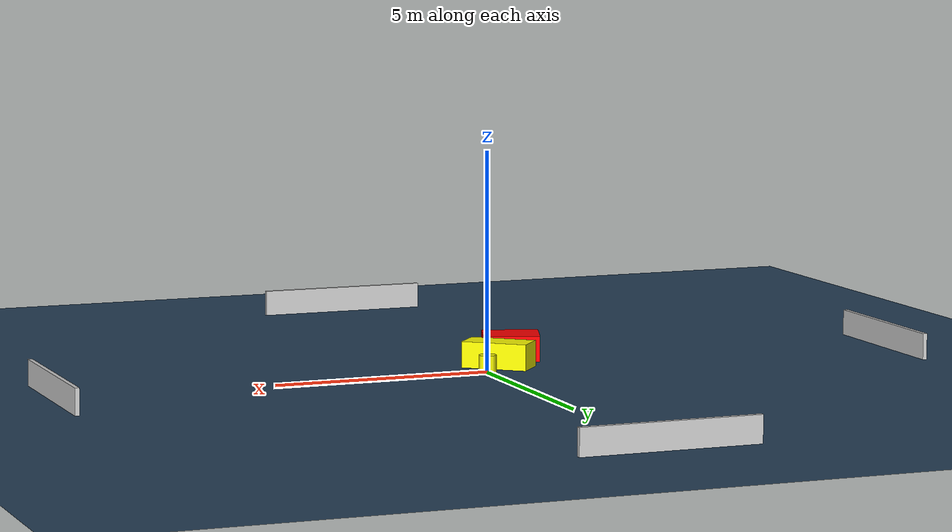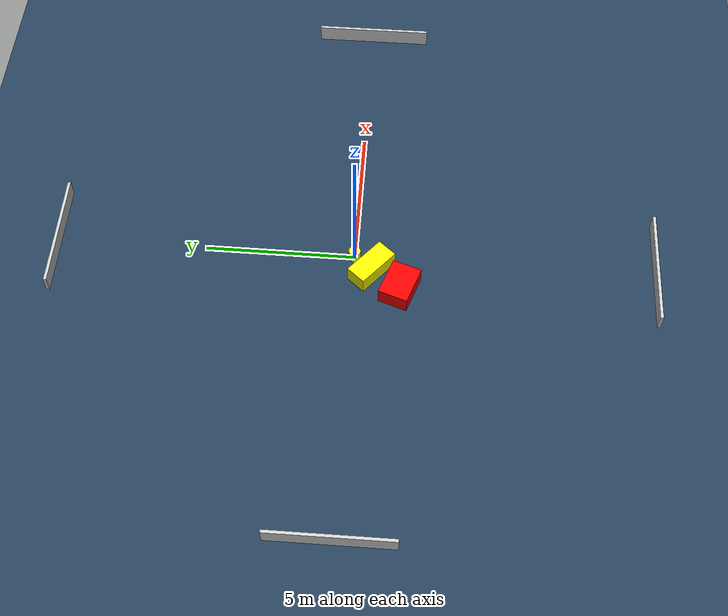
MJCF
<?xml version="1.0" ?>
<mujoco model="generated_environment">
  <option timestep="0.01" integrator="RK4" cone="elliptic"/>
  <default>
    <geom density="1"/>
  </default>
  <asset>
    <texture builtin="gradient" height="3072" name="skybox" rgb1="0.3 0.5 0.7" rgb2="0 0 0" type="skybox" width="512"/>
    <texture builtin="checker" height="300" name="groundplane" rgb1="0.2 0.3 0.4" rgb2="0.1 0.2 0.3" type="2d" width="300"/>
    <material name="groundplane" reflectance="0.2" texrepeat="5 5" texture="groundplane"/>
  </asset>
  <worldbody>
    <light dir="0 0 -1" directional="true" pos="0 0 1.5"/>
    <geom condim="3" friction="0.5 0.005 0.001" material="groundplane" name="floor" pos="0 0 0" size="0 0 0.05" type="plane"/>
    <body name="walls">
      <geom name="wall_1" condim="4" pos="-10.0 0.0 0.3" rgba="0.800000011920929 0.800000011920929 0.800000011920929 1.0" size="0.05 2.0 0.3" type="box"/>
      <geom name="wall_2" condim="4" pos="10.0 0.0 0.3" rgba="0.800000011920929 0.800000011920929 0.800000011920929 1.0" size="0.05 2.0 0.3" type="box"/>
      <geom name="wall_3" condim="4" pos="0.0 -10.0 0.3" rgba="0.800000011920929 0.800000011920929 0.800000011920929 1.0" size="2.0 0.05 0.3" type="box"/>
      <geom name="wall_4" condim="4" pos="0.0 10.0 0.3" rgba="0.800000011920929 0.800000011920929 0.800000011920929 1.0" size="2.0 0.05 0.3" type="box"/>
    </body>
    <body name="robot">
      <joint name="joint_x" type="slide" pos="0 0 0" axis="1 0 0"/>
      <joint name="joint_y" type="slide" pos="0 0 0" axis="0 1 0"/>
      <geom name="robot" type="cylinder" pos="0.0 0.0 0.2" size="0.2 0.2 0.0" mass="5.0" friction="1.0 0.005 0.0001" condim="4" rgba="1.0 1.0 0.0 1.0"/>
    </body>
    <body name="obstacle_1_movable">
      <geom name="obstacle_1_movable" condim="4" pos="-0.5037512171536097 -0.5919216892532849 0.3" euler="0 0 49.706081404917065" friction="0.0 0.005 0.001" rgba="1.0 1.0 0.0 1.0" size="0.3590738782563172 0.7615139513687035 0.3" type="box" mass="0.1"/>
      <joint type="free"/>
    </body>
    <body name="obstacle_2_static">
      <geom name="obstacle_2_static" condim="4" pos="-1.1839386072463263 -1.5645821998285294 0.3" euler="0 0 70.9229615647445" friction="0.0 0.005 0.001" rgba="1.0 0.0 0.0 1.0" size="0.4999026376106952 0.6513107429990366 0.3" type="box"/>
    </body>
  </worldbody>
  <actuator>
    <motor name="actuator_x" joint="joint_x" gear="1" ctrlrange="-1 1"/>
    <motor name="actuator_y" joint="joint_y" gear="1" ctrlrange="-1 1"/>
  </actuator>
</mujoco>
